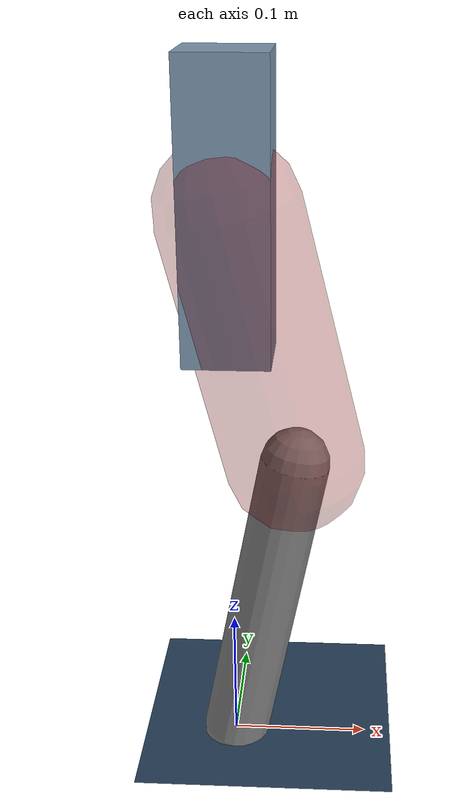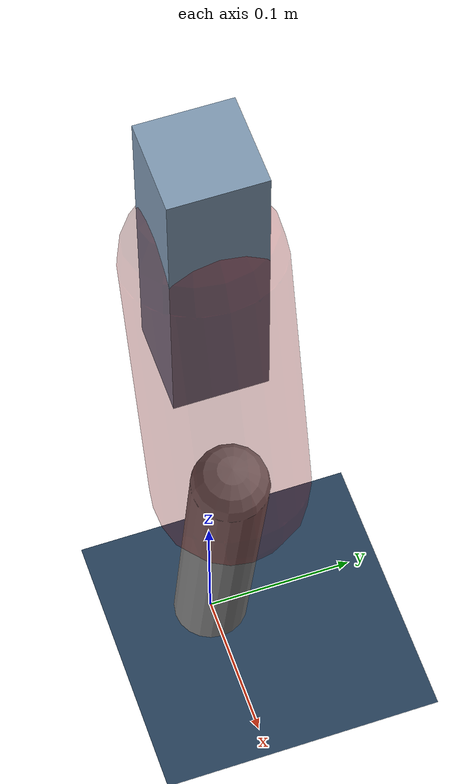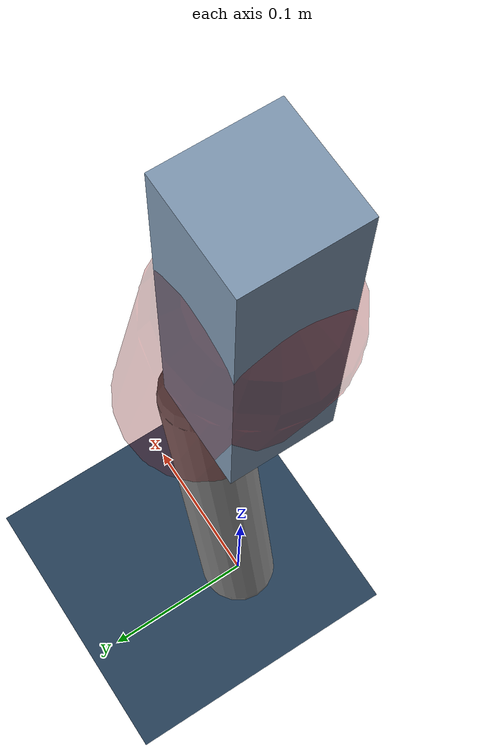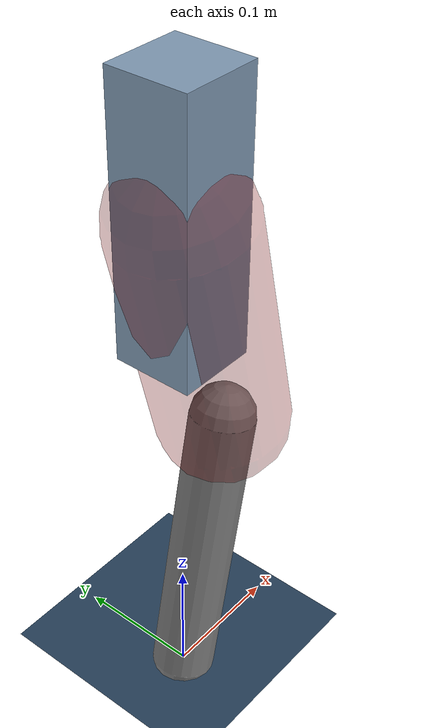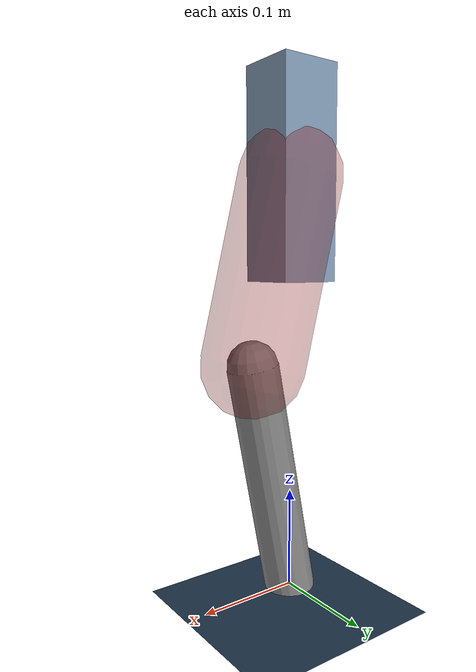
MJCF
<mujoco model="Hopper2D">
	<compiler inertiafromgeom="true" angle="radian" />
	<option timestep="0.001" integrator="implicit" cone="elliptic" solver="Newton" tolerance="1e-10" />

	<default>
		<geom contype="1" conaffinity="1" condim="3" friction="2 0.005 0.0001" solref="0.005 1" />
		<joint limited="true" damping="0.1" />
	</default>

	<asset>
		<texture name="skybox" type="skybox" builtin="gradient" rgb1=".4 .6 .8" rgb2="0 0 0" width="800" height="800" />
		<texture name="grid" type="2d" builtin="checker" rgb1=".1 .2 .3" rgb2=".2 .3 .4" width="300" height="300" mark="edge" markrgb=".2 .3 .4" />
		<material name="ground" texture="grid" texrepeat="1 1" texuniform="true" reflectance="0.1" />
		<material name="leg" rgba="0.5 0.6 0.7 1" />
	</asset>

	<worldbody>

		<geom name="floor" type="plane" size="5 5 0.25" material="ground" />

		<light directional="false" diffuse="0.8 0.8 0.8" specular="0.3 0.3 0.3" pos="0 0 2" dir="0 0 -1" />
		<light mode="targetbodycom" target="base" directional="false" diffuse="0.8 0.8 0.8" specular="0.3 0.3 0.3" pos="0 0 2" dir="0 0 -1" />

		<camera name="fixed" pos="0 -2 1" xyaxes="1 0 0 0 0 1" />
		<camera name="tracking" mode="trackcom" pos="0 -3 1" />

		<body name="root" pos="0 0 0.410604742481055">
			<joint name="slide_x" type="slide" axis="1 0 0" range="-100 100" />
			<joint name="slide_z" type="slide" axis="0 0 1" range="0 10" />

			<body name="base" pos="0 0 0">
				<geom name="torso" type="box" size="0.03 0.03 0.1" mass="2.75" material="leg" />

				<body name="link1" pos="0 0 0" euler="0 1.323624310510077 0">
					<joint type="hinge" axis="0 -1 0" pos="0 0 0" name="hinge1" limited="true" range="-3.14 3.14" stiffness="0" damping="0.1" />
					<geom name="thigh" type="capsule" fromto="0 0 0 0.18488563978172284 0 0" size="0.05" rgba="0.5 0 0 0.3" mass="0.6924255354761348" />

					<body name="link2" pos="0.18488563978172284 0 0" euler="0 0.44027047888122584 0">
						<joint type="hinge" axis="0 -1 0" pos="0 0 0" name="hinge2" limited="true" range="-3.14 3.14" stiffness="0" damping="0.1" />
						<geom name="shank" type="capsule" fromto="0 0 0 0.23571910269933216 0 0" size="0.025" mass="0.43074719242939896" />

					</body>
				</body>
			</body>
		</body>
	</worldbody>

	<actuator>
		<motor name="torque1" joint="hinge1" ctrlrange="-29.79982433456066 29.79982433456066" ctrllimited="true" gear="1" />
		<motor name="torque2" joint="hinge2" ctrlrange="-88.34276961109447 88.34276961109447" ctrllimited="true" gear="1" />
	</actuator>
</mujoco>
